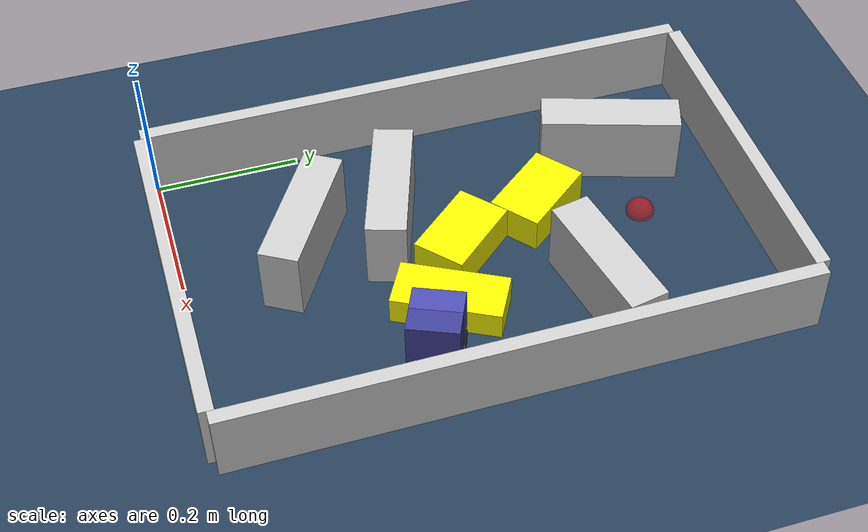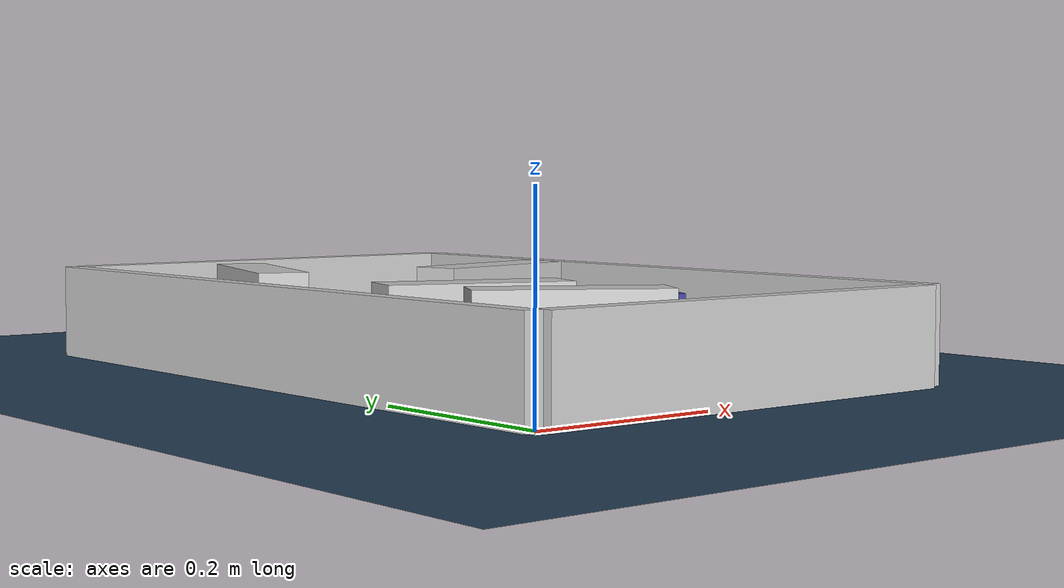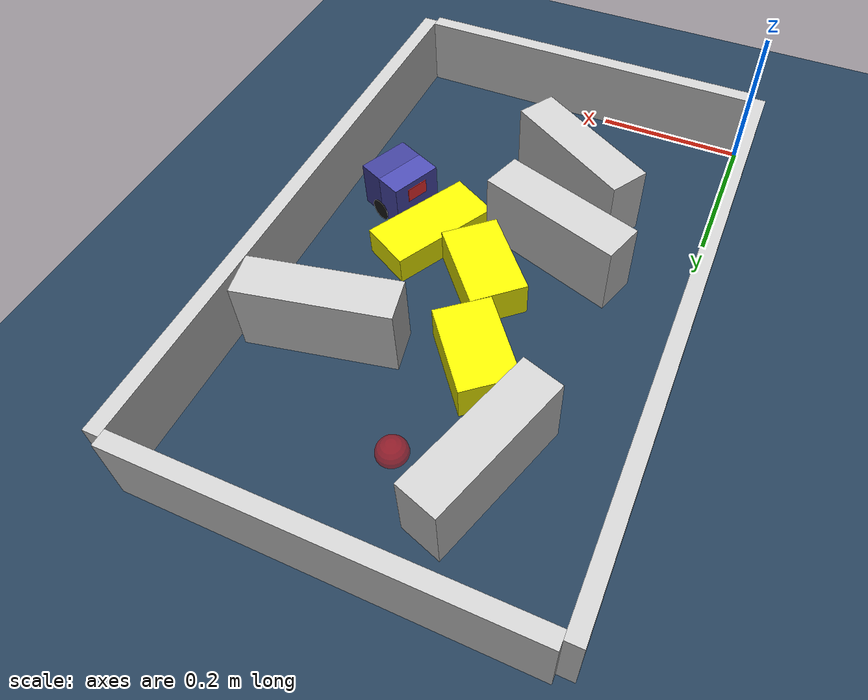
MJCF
<?xml version='1.0' encoding='utf-8'?>
<mujoco model="real_buildable">
  <compiler angle="degree" />
  <option timestep="0.002" integrator="implicitfast" iterations="100" cone="elliptic" />
  <default>
    <geom density="1" />
  </default>
  <asset>
    <texture builtin="gradient" height="3072" rgb1="0.3 0.5 0.7" rgb2="0 0 0" type="skybox" width="512" />
    <texture builtin="checker" height="300" mark="edge" markrgb="0.8 0.8 0.8" name="groundplane" rgb1="0.2 0.3 0.4" rgb2="0.1 0.2 0.3" type="2d" width="300" />
    <material name="groundplane" reflectance="0.2" texrepeat="5 5" texture="groundplane" texuniform="true" />
  </asset>
  <worldbody>
    <light dir="0 0 -1" directional="true" pos="0 0 1.5" />
    <geom name="floor" type="plane" condim="4" friction="0.5 0.005 0.001" material="groundplane" size="0 0 0.05" />
    <body name="walls">
      <geom name="wall_boundary_left" type="box" condim="4" friction="1.0 0.005 0.0001" rgba="0.8 0.8 0.8 1" pos="-0.010000 0.387500 0.050000" euler="0 0 0.000000" size="0.010000 0.397500 0.050000" />
      <geom name="wall_boundary_right" type="box" condim="4" friction="1.0 0.005 0.0001" rgba="0.8 0.8 0.8 1" pos="0.500000 0.387500 0.050000" euler="0 0 0.000000" size="0.010000 0.397500 0.050000" />
      <geom name="wall_boundary_bottom" type="box" condim="4" friction="1.0 0.005 0.0001" rgba="0.8 0.8 0.8 1" pos="0.245000 -0.010000 0.050000" euler="0 0 0.000000" size="0.245000 0.010000 0.050000" />
      <geom name="wall_boundary_top" type="box" condim="4" friction="1.0 0.005 0.0001" rgba="0.8 0.8 0.8 1" pos="0.245000 0.785000 0.050000" euler="0 0 0.000000" size="0.245000 0.010000 0.050000" />
      <geom name="wall_inner_1" type="box" condim="4" friction="1.0 0.005 0.0001" rgba="0.8 0.8 0.8 1" pos="0.191549 0.172272 0.050000" euler="0 0 -31.119121" size="0.097500 0.027500 0.050000" />
      <geom name="wall_inner_2" type="box" condim="4" friction="1.0 0.005 0.0001" rgba="0.8 0.8 0.8 1" pos="0.176347 0.297541 0.050000" euler="0 0 -18.430544" size="0.097500 0.027500 0.050000" />
      <geom name="wall_inner_3" type="box" condim="4" friction="1.0 0.005 0.0001" rgba="0.8 0.8 0.8 1" pos="0.389000 0.531000 0.050000" euler="0 0 11.200000" size="0.097500 0.027500 0.050000" />
      <geom name="wall_inner_4" type="box" condim="4" friction="1.0 0.005 0.0001" rgba="0.8 0.8 0.8 1" pos="0.140000 0.630000 0.050000" euler="0 0 71.700000" size="0.097500 0.027500 0.050000" />
    </body>
    <body name="car" pos="0.40405860054936427 0.29470422942465913 0.01" quat="0.20594237013308472 0 0 0.97856412165170226">
      <freejoint name="car_freejoint" />
      <inertial pos="0 0 0.0375" mass="0.35" diaginertia="0.000266 0.000266 0.000286" />
      <geom name="front_chassis_collision" type="box" pos="0.0175 0 0.0375" size="0.0175 0.035 0.0325" rgba="0.3 0.3 0.7 1" />
      <geom name="rear_chassis_collision" type="box" pos="-0.0175 0 0.0375" size="0.0175 0.035 0.0325" rgba="0.25 0.25 0.6 1" />
      <geom name="front_marker" type="box" pos="0.034 0 0.0505" size="0.002 0.015 0.01" rgba="1 0.2 0.2 1" contype="0" conaffinity="0" />
      <body name="rear_support_body" pos="-0.03 0 0.0025">
        <joint name="rear_caster_joint" type="ball" damping="0.0001" />
        <inertial pos="0 0 0" mass="0.025" diaginertia="0.000001 0.000001 0.000001" />
        <geom name="rear_support" type="sphere" pos="0 0 0" size="0.0025" friction="0 0 0" rgba="0.7 0.1 0.1 1" />
      </body>
      <body name="front_support_body" pos="0.03 0 0.0025">
        <joint name="front_caster_joint" type="ball" damping="0.0001" />
        <inertial pos="0 0 0" mass="0.025" diaginertia="0.000001 0.000001 0.000001" />
        <geom name="front_support" type="sphere" pos="0 0 0" size="0.0025" friction="0 0 0" rgba="0.1 0.7 0.1 1" />
      </body>
      <body name="left_wheel" pos="0 0.0375 0.015">
        <inertial pos="0 0 0" mass="0.05" diaginertia="0.000003 0.000006 0.000003" />
        <joint name="left_wheel_joint" type="hinge" axis="0 1 0" damping="0.01" armature="0.0001" />
        <geom name="left_wheel_collision" type="cylinder" size="0.015 0.0005" euler="90 0 0" rgba="0.1 0.1 0.1 1" />
      </body>
      <body name="right_wheel" pos="0 -0.0375 0.015">
        <inertial pos="0 0 0" mass="0.05" diaginertia="0.000003 0.000006 0.000003" />
        <joint name="right_wheel_joint" type="hinge" axis="0 1 0" damping="0.01" armature="0.0001" />
        <geom name="right_wheel_collision" type="cylinder" size="0.015 0.0005" euler="90 0 0" rgba="0.1 0.1 0.1 1" />
      </body>
    </body>
    <body name="obstacle_0_movable">
      <geom name="obstacle_0_movable" condim="4" pos="0.34114187661152445 0.33278886694086568 0.02" friction="1 0.005 0.0001" rgba="1 1 0 1" size="0.035000 0.075000 0.020000" type="box" mass="0.1" quat="0.24426025626177958 0 0 0.96970971285788909" />
      <joint type="free" />
    </body>
    <body name="obstacle_1_movable">
      <geom name="obstacle_1_movable" condim="4" pos="0.20492863880118006 0.49922209293641046 0.025000000000000001" friction="1 0.005 0.0001" rgba="1 1 0 1" size="0.037500 0.060000 0.025000" type="box" mass="0.1" quat="0.94196763412925966 0 0 0.33570370306704261" />
      <joint type="free" />
    </body>
    <body name="obstacle_2_movable">
      <geom name="obstacle_2_movable" condim="4" pos="0.24657806935855797 0.37669990494018457 0.025000000000000001" friction="1 0.005 0.0001" rgba="1 1 0 1" size="0.037500 0.060000 0.025000" type="box" mass="0.1" quat="0.93530587418575784 0 0 0.35384024886043625" />
      <joint type="free" />
    </body>
    <site name="goal" type="sphere" pos="0.245000 0.640000 0.0" size="0.02" rgba="1 0 0 0.5" />
  </worldbody>
  <actuator>
    <velocity name="left_wheel_drive" joint="left_wheel_joint" ctrlrange="-25 25" kv="0.75" forcerange="-0.5 0.5" />
    <velocity name="right_wheel_drive" joint="right_wheel_joint" ctrlrange="-25 25" kv="0.75" forcerange="-0.5 0.5" />
  </actuator>
</mujoco>
